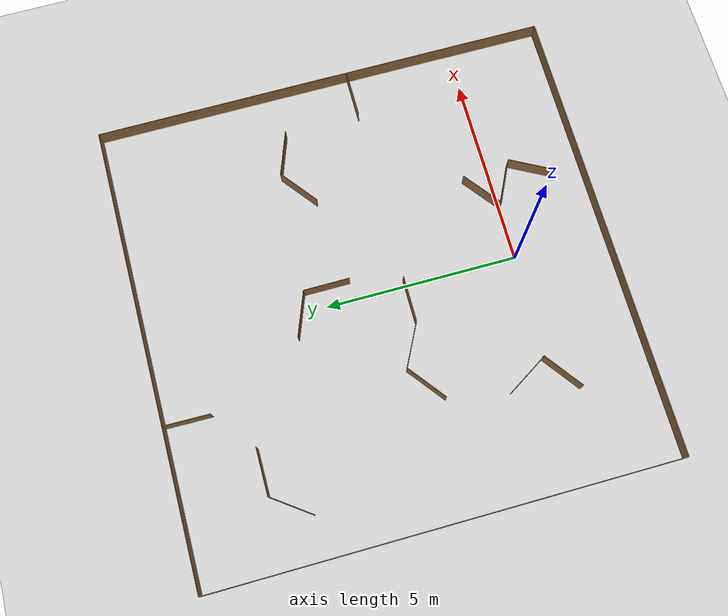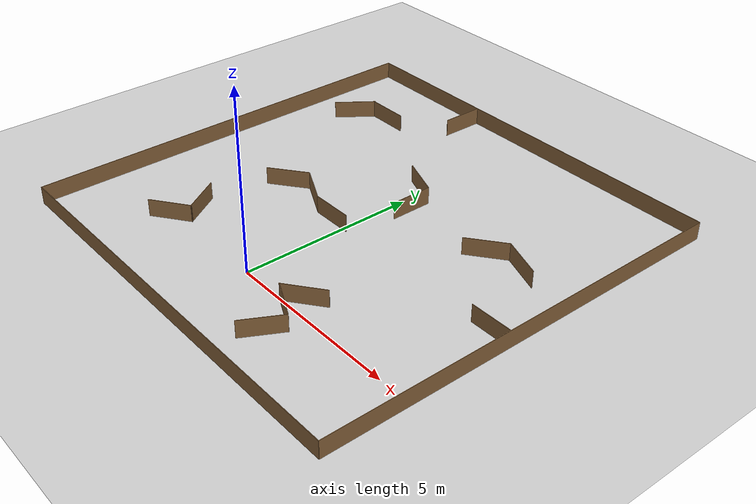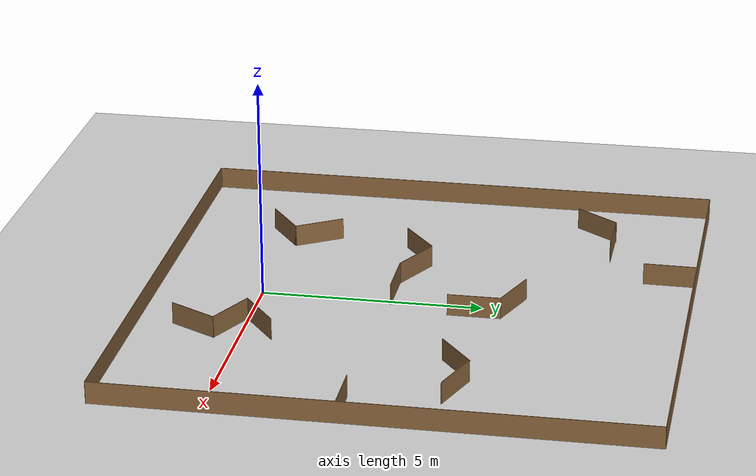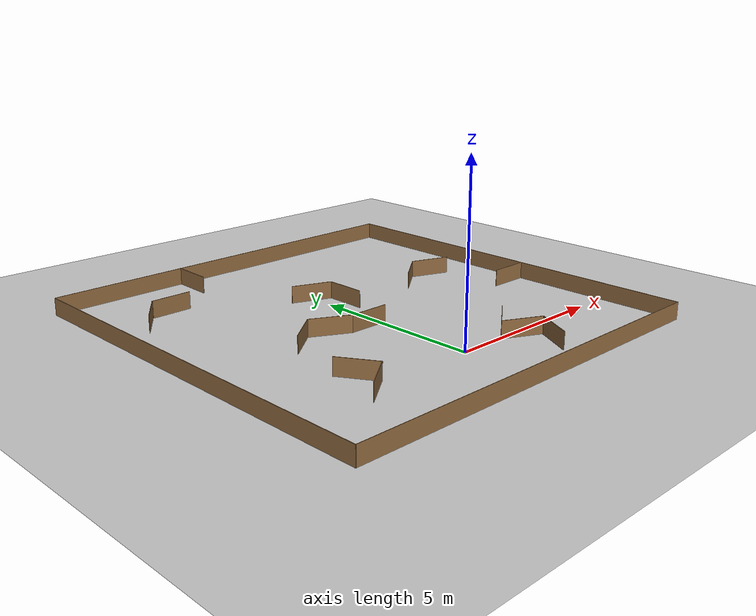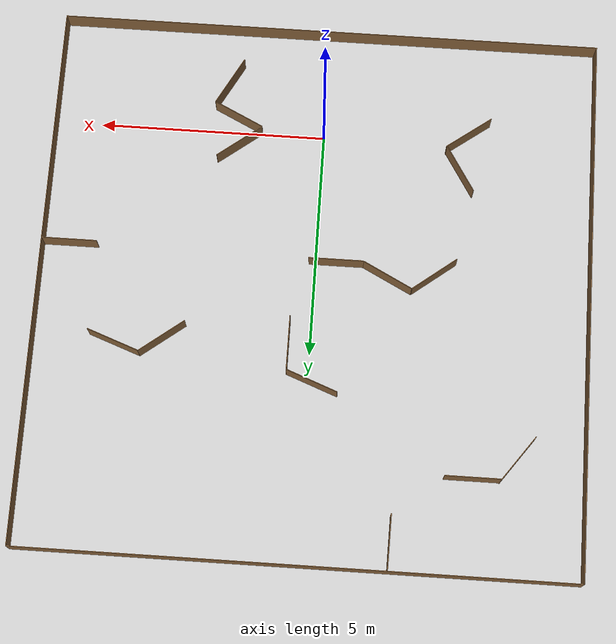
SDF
<sdf version="1.6">
 <world name="default">
  <scene><ambient>0.5 0.5 0.5 1</ambient><shadows>0</shadows><background>0.7 0.7 0.7 1</background></scene>
  <model name="ground_plane">
   <static>1</static>
   <link name="link">
    <collision name="collision">
     <geometry><plane><normal>0 0 1</normal><size>100 100</size></plane></geometry>
     <surface><friction><ode><mu>100</mu><mu2>50</mu2></ode></friction></surface>
    </collision>
    <visual name="visual">
     <cast_shadows>0</cast_shadows>
     <geometry><plane><normal>0 0 1</normal><size>100 100</size></plane></geometry>
     <material>
      <script><uri>file://media/materials/scripts/gazebo.material</uri><name>Gazebo/Grey</name></script>
     </material>
    </visual>
   </link>
  </model>
  <light name="sun" type="directional">
   <pose>0 0 10 0 -0 0</pose>
   <diffuse>0.8 0.8 0.8 1</diffuse>
   <specular>0.1 0.1 0.1 1</specular>
   <attenuation>
    <range>1000</range>
    <constant>0.9</constant>
    <linear>0.01</linear>
    <quadratic>0.001</quadratic>
   </attenuation>
   <direction>-0.5 0.5 -1</direction>
  </light>
  <gravity>0 0 -9.8</gravity>
  <magnetic_field>6e-06 2.3e-05 -4.2e-05</magnetic_field>
  <atmosphere type="adiabatic"/>
  <physics name="default_physics" default="0" type="ode">
   <max_step_size>0.001</max_step_size>
   <real_time_factor>1</real_time_factor>
   <real_time_update_rate>1000</real_time_update_rate>
  </physics>
  <scene><ambient>0.4 0.4 0.4 1</ambient><background>0.7 0.7 0.7 1</background><shadows>1</shadows></scene>
  <spherical_coordinates>
   <surface_model>EARTH_WGS84</surface_model>
   <latitude_deg>0</latitude_deg>
   <longitude_deg>0</longitude_deg>
   <elevation>0</elevation>
   <heading_deg>0</heading_deg>
  </spherical_coordinates>
  <model name="papptown_wall">
   <pose>2.18122 -1.0709 0 0 0 -0.496041</pose>
   <static>1</static>
   <link name="link">
    <pose>0 0 0.25 0 -0 0</pose>
    <collision name="collision"><geometry><box><size>0.015 1.2 0.5</size></box></geometry></collision>
    <visual name="visual">
     <geometry><box><size>0.015 1.2 0.5</size></box></geometry>
     <material>
      <ambient>0.5 0.5 0.5 1</ambient>
      <diffuse>0.57 0.417 0.25 1</diffuse>
      <specular>0.1 0.1 0.1 1</specular>
      <emissive>0 0 0 0</emissive>
     </material>
    </visual>
   </link>
  </model>
  <model name="cardboard_wall_6">
   <pose>-3.04994 0.66824 0 0 -0 0.554355</pose>
   <static>1</static>
   <link name="link">
    <pose>0 0 0.25 0 -0 0</pose>
    <collision name="collision"><geometry><box><size>0.015 1.2 0.5</size></box></geometry></collision>
    <visual name="visual">
     <geometry><box><size>0.015 1.2 0.5</size></box></geometry>
     <material>
      <ambient>0.5 0.5 0.5 1</ambient>
      <diffuse>0.57 0.417 0.25 1</diffuse>
      <specular>0.1 0.1 0.1 1</specular>
      <emissive>0 0 0 0</emissive>
     </material>
    </visual>
   </link>
  </model>
  <model name="cardboard_wall_10">
   <pose>-2.60193 3.13824 -0 0 0 -0.913867</pose>
   <static>1</static>
   <link name="link">
    <pose>0 0 0.25 0 -0 0</pose>
    <collision name="collision"><geometry><box><size>0.015 1.2 0.5</size></box></geometry></collision>
    <visual name="visual">
     <geometry><box><size>0.015 1.2 0.5</size></box></geometry>
     <material>
      <ambient>0.5 0.5 0.5 1</ambient>
      <diffuse>0.57 0.417 0.25 1</diffuse>
      <specular>0.1 0.1 0.1 1</specular>
      <emissive>0 0 0 0</emissive>
     </material>
    </visual>
   </link>
  </model>
  <model name="cardboard_wall_13">
   <pose>-0.450766 2.95146 0 0 -0 1.5708</pose>
   <static>1</static>
   <link name="link">
    <pose>0 0 0.25 0 -0 0</pose>
    <collision name="collision"><geometry><box><size>0.015 1.2 0.5</size></box></geometry></collision>
    <visual name="visual">
     <geometry><box><size>0.015 1.2 0.5</size></box></geometry>
     <material>
      <ambient>0.5 0.5 0.5 1</ambient>
      <diffuse>0.57 0.417 0.25 1</diffuse>
      <specular>0.1 0.1 0.1 1</specular>
      <emissive>0 0 0 0</emissive>
     </material>
    </visual>
   </link>
  </model>
  <model name="cardboard_wall_15">
   <pose>-4.56172 7.06035 0 0 0 -0.631093</pose>
   <static>1</static>
   <link name="link">
    <pose>0 0 0.25 0 -0 0</pose>
    <collision name="collision"><geometry><box><size>0.015 1.2 0.5</size></box></geometry></collision>
    <visual name="visual">
     <geometry><box><size>0.015 1.2 0.5</size></box></geometry>
     <material>
      <ambient>0.5 0.5 0.5 1</ambient>
      <diffuse>0.57 0.417 0.25 1</diffuse>
      <specular>0.1 0.1 0.1 1</specular>
      <emissive>0 0 0 0</emissive>
     </material>
    </visual>
   </link>
  </model>
  <model name="fence">
   <link name="cardboard_wall::link">
    <pose>0 3.6 0.25 0 -0 0</pose>
    <inertial>
     <mass>1</mass>
     <inertia><ixx>1</ixx><ixy>0</ixy><ixz>0</ixz><iyy>1</iyy><iyz>0</iyz><izz>1</izz></inertia>
    </inertial>
    <visual name="visual">
     <geometry><box><size>0.015 12 0.5</size></box></geometry>
     <material>
      <ambient>0.5 0.5 0.5 1</ambient>
      <diffuse>0.57 0.417 0.25 1</diffuse>
      <specular>0.1 0.1 0.1 1</specular>
      <emissive>0 0 0 1</emissive>
      <script><name>ModelPreview_1::cardboard_wall::link::visual_MATERIAL_</name><uri>__default__</uri></script>
      <shader type="vertex"><normal_map>__default__</normal_map></shader>
     </material>
    </visual>
    <collision name="collision">
     <geometry><box><size>0.015 12 0.5</size></box></geometry>
     <surface>
      <friction>
       <ode><mu>1</mu><mu2>1</mu2><fdir1>0 0 0</fdir1><slip1>0</slip1><slip2>0</slip2></ode>
       <torsional>
        <coefficient>1</coefficient>
        <patch_radius>0</patch_radius>
        <surface_radius>0</surface_radius>
        <use_patch_radius>1</use_patch_radius>
        <ode><slip>0</slip></ode>
       </torsional>
      </friction>
      <bounce><restitution_coefficient>0</restitution_coefficient><threshold>1e+06</threshold></bounce>
      <contact>
       <collide_without_contact>0</collide_without_contact>
       <collide_without_contact_bitmask>1</collide_without_contact_bitmask>
       <collide_bitmask>1</collide_bitmask>
       <ode>
        <soft_cfm>0</soft_cfm>
        <soft_erp>0.2</soft_erp>
        <kp>1e+13</kp>
        <kd>1</kd>
        <max_vel>0.01</max_vel>
        <min_depth>0</min_depth>
       </ode>
       <bullet>
        <split_impulse>1</split_impulse>
        <split_impulse_penetration_threshold>-0.01</split_impulse_penetration_threshold>
        <soft_cfm>0</soft_cfm>
        <soft_erp>0.2</soft_erp>
        <kp>1e+13</kp>
        <kd>1</kd>
       </bullet>
      </contact>
     </surface>
    </collision>
   </link>
   <link name="link_clone">
    <pose>12 3.6 0.25 0 -0 0</pose>
    <inertial>
     <mass>1</mass>
     <inertia><ixx>1</ixx><ixy>0</ixy><ixz>0</ixz><iyy>1</iyy><iyz>0</iyz><izz>1</izz></inertia>
    </inertial>
    <visual name="visual">
     <geometry><box><size>0.015 12 0.5</size></box></geometry>
     <material>
      <ambient>0.5 0.5 0.5 1</ambient>
      <diffuse>0.57 0.417 0.25 1</diffuse>
      <specular>0.1 0.1 0.1 1</specular>
      <emissive>0 0 0 1</emissive>
      <script><name>ModelPreview_1::cardboard_wall::link::visual_MATERIAL_</name><uri>__default__</uri></script>
      <shader type="vertex"><normal_map>__default__</normal_map></shader>
     </material>
    </visual>
    <collision name="collision">
     <geometry><box><size>0.015 12 0.5</size></box></geometry>
     <surface>
      <friction>
       <ode><mu>1</mu><mu2>1</mu2><fdir1>0 0 0</fdir1><slip1>0</slip1><slip2>0</slip2></ode>
       <torsional>
        <coefficient>1</coefficient>
        <patch_radius>0</patch_radius>
        <surface_radius>0</surface_radius>
        <use_patch_radius>1</use_patch_radius>
        <ode><slip>0</slip></ode>
       </torsional>
      </friction>
      <bounce><restitution_coefficient>0</restitution_coefficient><threshold>1e+06</threshold></bounce>
      <contact>
       <collide_without_contact>0</collide_without_contact>
       <collide_without_contact_bitmask>1</collide_without_contact_bitmask>
       <collide_bitmask>1</collide_bitmask>
       <ode>
        <soft_cfm>0</soft_cfm>
        <soft_erp>0.2</soft_erp>
        <kp>1e+13</kp>
        <kd>1</kd>
        <max_vel>0.01</max_vel>
        <min_depth>0</min_depth>
       </ode>
       <bullet>
        <split_impulse>1</split_impulse>
        <split_impulse_penetration_threshold>-0.01</split_impulse_penetration_threshold>
        <soft_cfm>0</soft_cfm>
        <soft_erp>0.2</soft_erp>
        <kp>1e+13</kp>
        <kd>1</kd>
       </bullet>
      </contact>
     </surface>
    </collision>
   </link>
   <link name="link_clone_0">
    <pose>6 9.6 0.25 0 -0 1.571</pose>
    <inertial>
     <mass>1</mass>
     <inertia><ixx>1</ixx><ixy>0</ixy><ixz>0</ixz><iyy>1</iyy><iyz>0</iyz><izz>1</izz></inertia>
    </inertial>
    <visual name="visual">
     <geometry><box><size>0.015 12 0.5</size></box></geometry>
     <material>
      <ambient>0.5 0.5 0.5 1</ambient>
      <diffuse>0.57 0.417 0.25 1</diffuse>
      <specular>0.1 0.1 0.1 1</specular>
      <emissive>0 0 0 1</emissive>
      <script><name>ModelPreview_1::cardboard_wall::link::visual_MATERIAL_</name><uri>__default__</uri></script>
      <shader type="vertex"><normal_map>__default__</normal_map></shader>
     </material>
    </visual>
    <collision name="collision">
     <geometry><box><size>0.015 12 0.5</size></box></geometry>
     <surface>
      <friction>
       <ode><mu>1</mu><mu2>1</mu2><fdir1>0 0 0</fdir1><slip1>0</slip1><slip2>0</slip2></ode>
       <torsional>
        <coefficient>1</coefficient>
        <patch_radius>0</patch_radius>
        <surface_radius>0</surface_radius>
        <use_patch_radius>1</use_patch_radius>
        <ode><slip>0</slip></ode>
       </torsional>
      </friction>
      <bounce><restitution_coefficient>0</restitution_coefficient><threshold>1e+06</threshold></bounce>
      <contact>
       <collide_without_contact>0</collide_without_contact>
       <collide_without_contact_bitmask>1</collide_without_contact_bitmask>
       <collide_bitmask>1</collide_bitmask>
       <ode>
        <soft_cfm>0</soft_cfm>
        <soft_erp>0.2</soft_erp>
        <kp>1e+13</kp>
        <kd>1</kd>
        <max_vel>0.01</max_vel>
        <min_depth>0</min_depth>
       </ode>
       <bullet>
        <split_impulse>1</split_impulse>
        <split_impulse_penetration_threshold>-0.01</split_impulse_penetration_threshold>
        <soft_cfm>0</soft_cfm>
        <soft_erp>0.2</soft_erp>
        <kp>1e+13</kp>
        <kd>1</kd>
       </bullet>
      </contact>
     </surface>
    </collision>
   </link>
   <link name="link_clone_1">
    <pose>6 -2.4 0.25 0 -0 1.571</pose>
    <inertial>
     <mass>1</mass>
     <inertia><ixx>1</ixx><ixy>0</ixy><ixz>0</ixz><iyy>1</iyy><iyz>0</iyz><izz>1</izz></inertia>
    </inertial>
    <visual name="visual">
     <geometry><box><size>0.015 12 0.5</size></box></geometry>
     <material>
      <ambient>0.5 0.5 0.5 1</ambient>
      <diffuse>0.57 0.417 0.25 1</diffuse>
      <specular>0.1 0.1 0.1 1</specular>
      <emissive>0 0 0 1</emissive>
      <script><name>ModelPreview_1::cardboard_wall::link::visual_MATERIAL_</name><uri>__default__</uri></script>
      <shader type="vertex"><normal_map>__default__</normal_map></shader>
     </material>
    </visual>
    <collision name="collision">
     <geometry><box><size>0.015 12 0.5</size></box></geometry>
     <surface>
      <friction>
       <ode><mu>1</mu><mu2>1</mu2><fdir1>0 0 0</fdir1><slip1>0</slip1><slip2>0</slip2></ode>
       <torsional>
        <coefficient>1</coefficient>
        <patch_radius>0</patch_radius>
        <surface_radius>0</surface_radius>
        <use_patch_radius>1</use_patch_radius>
        <ode><slip>0</slip></ode>
       </torsional>
      </friction>
      <bounce><restitution_coefficient>0</restitution_coefficient><threshold>1e+06</threshold></bounce>
      <contact>
       <collide_without_contact>0</collide_without_contact>
       <collide_without_contact_bitmask>1</collide_without_contact_bitmask>
       <collide_bitmask>1</collide_bitmask>
       <ode>
        <soft_cfm>0</soft_cfm>
        <soft_erp>0.2</soft_erp>
        <kp>1e+13</kp>
        <kd>1</kd>
        <max_vel>0.01</max_vel>
        <min_depth>0</min_depth>
       </ode>
       <bullet>
        <split_impulse>1</split_impulse>
        <split_impulse_penetration_threshold>-0.01</split_impulse_penetration_threshold>
        <soft_cfm>0</soft_cfm>
        <soft_erp>0.2</soft_erp>
        <kp>1e+13</kp>
        <kd>1</kd>
       </bullet>
      </contact>
     </surface>
    </collision>
   </link>
   <static>1</static>
   <pose>-6 0 0 0 -0 0</pose>
  </model>
  <physics name="default_physics" default="0" type="ode">
   <max_step_size>0.005</max_step_size>
   <real_time_factor>1</real_time_factor>
   <real_time_update_rate>100</real_time_update_rate>
  </physics>
  <audio><device>default</device></audio>
  <model name="wall_1_clone">
   <pose>-1.93775 8.99666 0 0 0 -0.015752</pose>
   <static>1</static>
   <link name="cardboard_wall::link">
    <pose>0 0 0.25 0 -0 0</pose>
    <collision name="collision"><geometry><box><size>0.015 1.2 0.5</size></box></geometry></collision>
    <visual name="visual">
     <geometry><box><size>0.015 1.2 0.5</size></box></geometry>
     <material>
      <ambient>0.5 0.5 0.5 1</ambient>
      <diffuse>0.57 0.417 0.25 1</diffuse>
      <specular>0.1 0.1 0.1 1</specular>
      <emissive>0 0 0 0</emissive>
     </material>
    </visual>
   </link>
  </model>
  <model name="cardboard_wall_6_clone">
   <pose>-0.095672 5.67961 0 0 -0 1.20901</pose>
   <static>1</static>
   <link name="link">
    <pose>0 0 0.25 0 -0 0</pose>
    <collision name="collision"><geometry><box><size>0.015 1.2 0.5</size></box></geometry></collision>
    <visual name="visual">
     <geometry><box><size>0.015 1.2 0.5</size></box></geometry>
     <material>
      <ambient>0.5 0.5 0.5 1</ambient>
      <diffuse>0.57 0.417 0.25 1</diffuse>
      <specular>0.1 0.1 0.1 1</specular>
      <emissive>0 0 0 0</emissive>
     </material>
    </visual>
   </link>
  </model>
  <model name="cardboard_wall_6_clone_0">
   <pose>1.92585 -0.283891 0 0 -0 1.11792</pose>
   <static>1</static>
   <link name="link">
    <pose>0 0 0.25 0 -0 0</pose>
    <collision name="collision"><geometry><box><size>0.015 1.2 0.5</size></box></geometry></collision>
    <visual name="visual">
     <geometry><box><size>0.015 1.2 0.5</size></box></geometry>
     <material>
      <ambient>0.5 0.5 0.5 1</ambient>
      <diffuse>0.57 0.417 0.25 1</diffuse>
      <specular>0.1 0.1 0.1 1</specular>
      <emissive>0 0 0 0</emissive>
     </material>
    </visual>
   </link>
  </model>
  <model name="cardboard_wall_13_clone">
   <pose>5.39107 2.87225 0 0 -0 1.5708</pose>
   <static>1</static>
   <link name="link">
    <pose>0 0 0.25 0 -0 0</pose>
    <collision name="collision"><geometry><box><size>0.015 1.2 0.5</size></box></geometry></collision>
    <visual name="visual">
     <geometry><box><size>0.015 1.2 0.5</size></box></geometry>
     <material>
      <ambient>0.5 0.5 0.5 1</ambient>
      <diffuse>0.57 0.417 0.25 1</diffuse>
      <specular>0.1 0.1 0.1 1</specular>
      <emissive>0 0 0 0</emissive>
     </material>
    </visual>
   </link>
  </model>
  <model name="cardboard_wall_6_clone_2">
   <pose>4.22808 5.05994 0 0 -0 1.22194</pose>
   <static>1</static>
   <link name="link">
    <pose>0 0 0.25 0 -0 0</pose>
    <collision name="collision"><geometry><box><size>0.015 1.2 0.5</size></box></geometry></collision>
    <visual name="visual">
     <geometry><box><size>0.015 1.2 0.5</size></box></geometry>
     <material>
      <ambient>0.5 0.5 0.5 1</ambient>
      <diffuse>0.57 0.417 0.25 1</diffuse>
      <specular>0.1 0.1 0.1 1</specular>
      <emissive>0 0 0 0</emissive>
     </material>
    </visual>
   </link>
  </model>
  <model name="cardboard_wall_15_clone">
   <pose>-3.21265 -0.176604 -0 0 0 -0.936139</pose>
   <static>1</static>
   <link name="link">
    <pose>0 0 0.25 0 -0 0</pose>
    <collision name="collision"><geometry><box><size>0.015 1.2 0.5</size></box></geometry></collision>
    <visual name="visual">
     <geometry><box><size>0.015 1.2 0.5</size></box></geometry>
     <material>
      <ambient>0.5 0.5 0.5 1</ambient>
      <diffuse>0.57 0.417 0.25 1</diffuse>
      <specular>0.1 0.1 0.1 1</specular>
      <emissive>0 0 0 0</emissive>
     </material>
    </visual>
   </link>
  </model>
  <model name="cardboard_wall_10_clone">
   <pose>1.86555 0.346344 -0.008216 0 0 -0.913867</pose>
   <static>1</static>
   <link name="link">
    <pose>0 0 0.25 0 -0 0</pose>
    <collision name="collision"><geometry><box><size>0.015 1.2 0.5</size></box></geometry></collision>
    <visual name="visual">
     <geometry><box><size>0.015 1.2 0.5</size></box></geometry>
     <material>
      <ambient>0.5 0.5 0.5 1</ambient>
      <diffuse>0.57 0.417 0.25 1</diffuse>
      <specular>0.1 0.1 0.1 1</specular>
      <emissive>0 0 0 0</emissive>
     </material>
    </visual>
   </link>
  </model>
  <model name="cardboard_wall_10_clone_0">
   <pose>3.1929 4.90642 0 0 0 -0.913867</pose>
   <static>1</static>
   <link name="link">
    <pose>0 0 0.25 0 -0 0</pose>
    <collision name="collision"><geometry><box><size>0.015 1.2 0.5</size></box></geometry></collision>
    <visual name="visual">
     <geometry><box><size>0.015 1.2 0.5</size></box></geometry>
     <material>
      <ambient>0.5 0.5 0.5 1</ambient>
      <diffuse>0.57 0.417 0.25 1</diffuse>
      <specular>0.1 0.1 0.1 1</specular>
      <emissive>0 0 0 0</emissive>
     </material>
    </visual>
   </link>
  </model>
  <model name="cardboard_wall_15_clone_clone">
   <pose>0.462759 4.87463 0 0 -0 0</pose>
   <static>1</static>
   <link name="link">
    <pose>0 0 0.25 0 -0 0</pose>
    <collision name="collision"><geometry><box><size>0.015 1.2 0.5</size></box></geometry></collision>
    <visual name="visual">
     <geometry><box><size>0.015 1.2 0.5</size></box></geometry>
     <material>
      <ambient>0.5 0.5 0.5 1</ambient>
      <diffuse>0.57 0.417 0.25 1</diffuse>
      <specular>0.1 0.1 0.1 1</specular>
      <emissive>0 0 0 0</emissive>
     </material>
    </visual>
   </link>
  </model>
  <model name="cardboard_wall_6_clone_clone">
   <pose>-1.58644 3.23015 0 0 -0 1.09729</pose>
   <static>1</static>
   <link name="link">
    <pose>0 0 0.25 0 -0 0</pose>
    <collision name="collision"><geometry><box><size>0.015 1.2 0.5</size></box></geometry></collision>
    <visual name="visual">
     <geometry><box><size>0.015 1.2 0.5</size></box></geometry>
     <material>
      <ambient>0.5 0.5 0.5 1</ambient>
      <diffuse>0.57 0.417 0.25 1</diffuse>
      <specular>0.1 0.1 0.1 1</specular>
      <emissive>0 0 0 0</emissive>
     </material>
    </visual>
   </link>
  </model>
  <model name="cardboard_wall_13_clone_clone">
   <pose>-3.61417 7.5266 -0 0 -0 1.5708</pose>
   <static>1</static>
   <link name="link">
    <pose>0 0 0.25 0 -0 0</pose>
    <collision name="collision"><geometry><box><size>0.015 1.2 0.5</size></box></geometry></collision>
    <visual name="visual">
     <geometry><box><size>0.015 1.2 0.5</size></box></geometry>
     <material>
      <ambient>0.5 0.5 0.5 1</ambient>
      <diffuse>0.57 0.417 0.25 1</diffuse>
      <specular>0.1 0.1 0.1 1</specular>
      <emissive>0 0 0 0</emissive>
     </material>
    </visual>
   </link>
  </model>
 </world>
</sdf>
